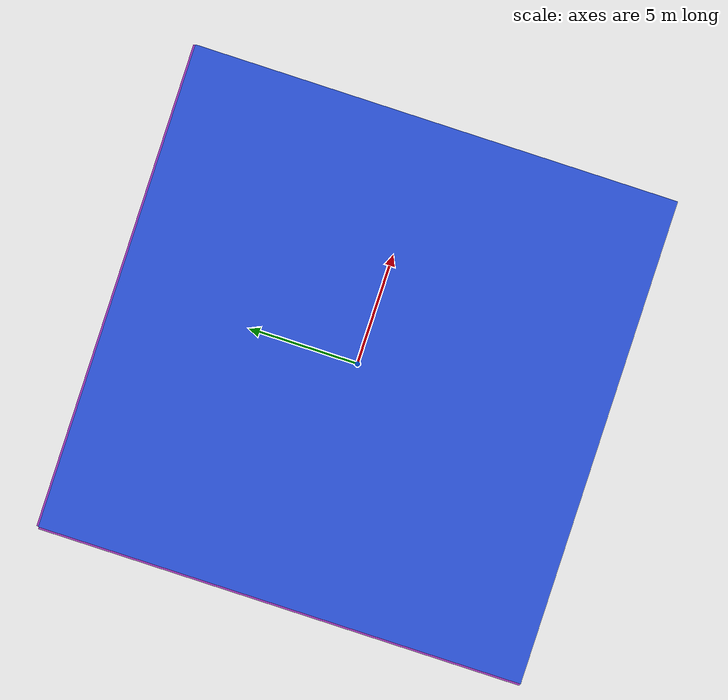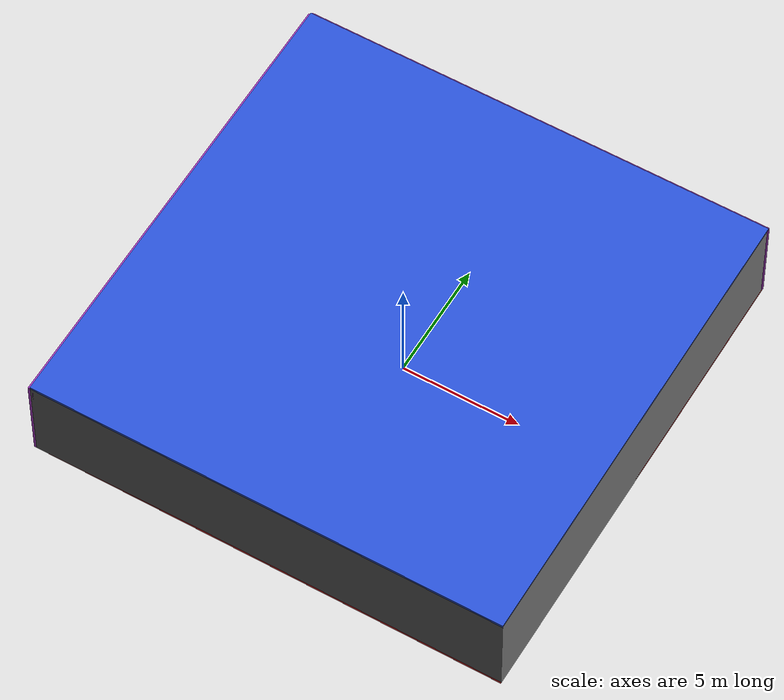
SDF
<sdf version="1.4">
 <world name="default">
  <physics type="ode">
   <max_step_size>0.001</max_step_size>
   <real_time_factor>1</real_time_factor>
   <real_time_update_rate>1000</real_time_update_rate>
   <gravity>0 0 -9.8</gravity>
  </physics>
  <scene><ambient>0.4 0.4 0.4 1</ambient><background>0.7 0.7 0.7 1</background><shadows>1</shadows></scene>
  <model name="Surrounding">
   <static>1</static>
   <link name="Ceiling">
    <collision name="Ceiling_Collision"><geometry><box><size>20 20 0.1</size></box></geometry></collision>
    <visual name="Ceiling_Visual">
     <geometry><box><size>20 20 0.1</size></box></geometry>
     <material>
      <script><uri>file://media/materials/scripts/gazebo.material</uri><name>Gazebo/BlueLaser</name></script>
     </material>
    </visual>
    <pose>0 0 4.05 0 0 0</pose>
   </link>
   <link name="Wall_South">
    <collision name="Wall_South_Collision">
     <geometry><box><size>20 0 4</size></box></geometry>
     <pose>0 0 2 0 -0 0</pose>
    </collision>
    <visual name="Wall_South_Visual">
     <pose>0 0 2 0 -0 0</pose>
     <geometry><box><size>20 0 4</size></box></geometry>
     <material>
      <script><uri>file://media/materials/scripts/gazebo.material</uri><name>Gazebo/Road</name></script>
     </material>
    </visual>
    <velocity_decay><linear>0</linear><angular>0</angular></velocity_decay>
    <pose>0 -10 0 0 -0 0</pose>
   </link>
   <link name="Wall_East">
    <collision name="Wall_21_Collision">
     <geometry><box><size>20 0 4</size></box></geometry>
     <pose>0 0 2 0 -0 0</pose>
    </collision>
    <visual name="Wall_21_Visual">
     <pose>0 0 2 0 -0 0</pose>
     <geometry><box><size>20 0 4</size></box></geometry>
     <material>
      <script><uri>file://media/materials/scripts/gazebo.material</uri><name>Gazebo/LightOn</name></script>
     </material>
    </visual>
    <velocity_decay><linear>0</linear><angular>0</angular></velocity_decay>
    <pose>10 0 0 0 -0 1.5708</pose>
   </link>
   <link name="Wall_North">
    <collision name="Wall_22_Collision">
     <geometry><box><size>20 0.2 4</size></box></geometry>
     <pose>0 0 2 0 -0 0</pose>
    </collision>
    <visual name="Wall_22_Visual">
     <pose>0 0 2 0 -0 0</pose>
     <geometry><box><size>20 0.2 4</size></box></geometry>
     <material>
      <script><uri>file://media/materials/scripts/gazebo.material</uri><name>Gazebo/PurpleGlow</name></script>
     </material>
    </visual>
    <velocity_decay><linear>0</linear><angular>0</angular></velocity_decay>
    <pose>0 10 0 0 -0 0</pose>
   </link>
   <link name="Wall_West">
    <collision name="Wall_23_Collision">
     <geometry><box><size>20 0.2 4</size></box></geometry>
     <pose>0 0 2 0 -0 0</pose>
    </collision>
    <visual name="Wall_23_Visual">
     <pose>0 0 2 0 -0 0</pose>
     <geometry><box><size>20 0.2 4</size></box></geometry>
     <material>
      <script><uri>file://media/materials/scripts/gazebo.material</uri><name>Gazebo/PurpleGlow</name></script>
     </material>
    </visual>
    <velocity_decay><linear>0</linear><angular>0</angular></velocity_decay>
    <pose>-10 0 0 0 0 -1.5708</pose>
   </link>
   <link name="Ground_link">
    <collision name="collision">
     <pose>0 0 .05 0 -0 0</pose>
     <geometry><box><size>20 20 0.1</size></box></geometry>
    </collision>
    <visual name="visual">
     <pose>0 0 .05 0 -0 0</pose>
     <geometry><box><size>20 20 0.1</size></box></geometry>
     <material>
      <script><uri>file://media/materials/scripts/gazebo.material</uri><name>Gazebo/Red</name></script>
     </material>
    </visual>
   </link>
   <static>1</static>
  </model>
  <spherical_coordinates>
   <surface_model>EARTH_WGS84</surface_model>
   <latitude_deg>0</latitude_deg>
   <longitude_deg>0</longitude_deg>
   <elevation>0</elevation>
   <heading_deg>0</heading_deg>
  </spherical_coordinates>
  <light name="lightball_0" type="diffuse">
   <diffuse>0.8 0.8 0.8 1</diffuse>
   <specular>0.2 0.2 0.2 1</specular>
   <attenuation>
    <range>100</range>
    <constant>0.7</constant>
    <linear>0.01</linear>
    <quadratic>0.001</quadratic>
   </attenuation>
   <direction>-0.5 0.1 -0.9</direction>
   <pose>-3.44864077778 6.02111767295 2.01624863194 0 0 0</pose>
  </light>
  <light name="lightball_1" type="diffuse">
   <diffuse>0.8 0.8 0.8 1</diffuse>
   <specular>0.2 0.2 0.2 1</specular>
   <attenuation>
    <range>100</range>
    <constant>0.7</constant>
    <linear>0.01</linear>
    <quadratic>0.001</quadratic>
   </attenuation>
   <direction>-0.5 0.1 -0.9</direction>
   <pose>6.47422879855 0.821346591508 1.30039781243 0 0 0</pose>
  </light>
  <light name="lightball_2" type="diffuse">
   <diffuse>0.8 0.8 0.8 1</diffuse>
   <specular>0.2 0.2 0.2 1</specular>
   <attenuation>
    <range>100</range>
    <constant>0.7</constant>
    <linear>0.01</linear>
    <quadratic>0.001</quadratic>
   </attenuation>
   <direction>-0.5 0.1 -0.9</direction>
   <pose>-3.45260100711 -8.74015438155 2.50297195635 0 0 0</pose>
  </light>
  <light name="lightball_3" type="diffuse">
   <diffuse>0.8 0.8 0.8 1</diffuse>
   <specular>0.2 0.2 0.2 1</specular>
   <attenuation>
    <range>100</range>
    <constant>0.7</constant>
    <linear>0.01</linear>
    <quadratic>0.001</quadratic>
   </attenuation>
   <direction>-0.5 0.1 -0.9</direction>
   <pose>-8.98157435827 2.46896066064 3.1847541786 0 0 0</pose>
  </light>
  <include>
   <uri>model://robocup_3Dsim_goal</uri>
   <pose>-8.63799574825 -0.959420222383 0 0 0 2.6215126506</pose>
  </include>
  <include>
   <uri>model://construction_cone</uri>
   <pose>-8.49032829101 7.62576691334 0 0 0 0.996138786455</pose>
  </include>
  <include>
   <uri>model://construction_cone</uri>
   <pose>-2.59162523926 7.79638427272 0 0 0 2.47026842804</pose>
  </include>
  <include><uri>model://cabinet</uri><pose>4.38540635347 -8.29494064289 0 0 0 0.131236230384</pose></include>
 </world>
</sdf>

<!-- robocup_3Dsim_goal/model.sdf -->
<sdf version="1.5">
  <model name="robocup_3d_goal">
    <static>true</static>
    <link name="left_post">
      <pose>0 1.05 0.45 0 0 0</pose>
      <collision name="collision">
        <geometry>
          <cylinder>
            <radius>0.05</radius>
            <length>0.9</length>
          </cylinder>
        </geometry>
      </collision>
      <visual name="visual">
        <geometry>
          <cylinder>
            <radius>0.05</radius>
            <length>0.9</length>
          </cylinder>
        </geometry>
        <material>
          <script>
            <uri>file://media/materials/scripts/gazebo.material</uri>
            <name>Gazebo/ZincYellow</name>
          </script>
        </material>
      </visual>
    </link>
    <link name="left_support_horiz_lower">
      <pose>0.30 1.05 0.01 0 0 0</pose>
      <collision name="collision">
        <geometry>
          <box>
            <size>0.50 0.02 0.02</size>
          </box>
        </geometry>
      </collision>
      <visual name="visual">
        <geometry>
          <box>
            <size>0.50 0.02 0.02</size>
          </box>
        </geometry>
        <material>
          <script>
            <uri>file://media/materials/scripts/gazebo.material</uri>
            <name>Gazebo/White</name>
          </script>
        </material>
      </visual>
    </link>
    <link name="left_support_horiz_upper">
      <pose>0.30 1.05 0.79 0 0 0</pose>
      <collision name="collision">
        <geometry>
          <box>
            <size>0.50 0.02 0.02</size>
          </box>
        </geometry>
      </collision>
      <visual name="visual">
        <geometry>
          <box>
            <size>0.50 0.02 0.02</size>
          </box>
        </geometry>
        <material>
          <script>
            <uri>file://media/materials/scripts/gazebo.material</uri>
            <name>Gazebo/White</name>
          </script>
        </material>
      </visual>
    </link>
    <link name="left_support_vertical">
      <pose>0.56 1.05 0.4 0 1.5708 0</pose>
      <collision name="collision">
        <geometry>
          <box>
            <size>0.80 0.02 0.02</size>
          </box>
        </geometry>
      </collision>
      <visual name="visual">
        <geometry>
          <box>
            <size>0.80 0.02 0.02</size>
          </box>
        </geometry>
        <material>
          <script>
            <uri>file://media/materials/scripts/gazebo.material</uri>
            <name>Gazebo/White</name>
          </script>
        </material>
      </visual>
    </link>
    <link name="right_support_horiz_lower">
      <pose>0.30 -1.05 0.01 0 0 0</pose>
      <collision name="collision">
        <geometry>
          <box>
            <size>0.50 0.02 0.02</size>
          </box>
        </geometry>
      </collision>
      <visual name="visual">
        <geometry>
          <box>
            <size>0.50 0.02 0.02</size>
          </box>
        </geometry>
        <material>
          <script>
            <uri>file://media/materials/scripts/gazebo.material</uri>
            <name>Gazebo/White</name>
          </script>
        </material>
      </visual>
    </link>
    <link name="right_support_horiz_upper">
      <pose>0.30 -1.05 0.79 0 0 0</pose>
      <collision name="collision">
        <geometry>
          <box>
            <size>0.50 0.02 0.02</size>
          </box>
        </geometry>
      </collision>
      <visual name="visual">
        <geometry>
          <box>
            <size>0.50 0.02 0.02</size>
          </box>
        </geometry>
        <material>
          <script>
            <uri>file://media/materials/scripts/gazebo.material</uri>
            <name>Gazebo/White</name>
          </script>
        </material>
      </visual>
    </link>
    <link name="right_support_vertical">
      <pose>0.56 -1.05 0.4 0 1.5708 0</pose>
      <collision name="collision">
        <geometry>
          <box>
            <size>0.80 0.02 0.02</size>
          </box>
        </geometry>
      </collision>
      <visual name="visual">
        <geometry>
          <box>
            <size>0.80 0.02 0.02</size>
          </box>
        </geometry>
        <material>
          <script>
            <uri>file://media/materials/scripts/gazebo.material</uri>
            <name>Gazebo/White</name>
          </script>
        </material>
      </visual>
    </link>
    <link name="center_support_horiz_lower">
      <pose>0.56 0 0.01 0 1.5708 0</pose>
      <collision name="collision">
        <geometry>
          <box>
            <size>0.02 2.08 0.02</size>
          </box>
        </geometry>
      </collision>
      <visual name="visual">
        <geometry>
          <box>
            <size>0.02 2.08 0.02</size>
          </box>
        </geometry>
        <material>
          <script>
            <uri>file://media/materials/scripts/gazebo.material</uri>
            <name>Gazebo/White</name>
          </script>
        </material>
      </visual>
    </link>
    <link name="center_support_horiz_upper">
      <pose>0.56 0 0.79 0 1.5708 0</pose>
      <collision name="collision">
        <geometry>
          <box>
            <size>0.02 2.08 0.02</size>
          </box>
        </geometry>
      </collision>
      <visual name="visual">
        <geometry>
          <box>
            <size>0.02 2.08 0.02</size>
          </box>
        </geometry>
        <material>
          <script>
            <uri>file://media/materials/scripts/gazebo.material</uri>
            <name>Gazebo/White</name>
          </script>
        </material>
      </visual>
    </link>
    <link name="right_post">
      <pose>0 -1.05 0.45 0 0 0</pose>
      <collision name="collision">
        <geometry>
          <cylinder>
            <radius>0.05</radius>
            <length>0.9</length>
          </cylinder>
        </geometry>
      </collision>
      <visual name="visual">
        <geometry>
          <cylinder>
            <radius>0.05</radius>
            <length>0.9</length>
          </cylinder>
        </geometry>
        <material>
          <script>
            <uri>file://media/materials/scripts/gazebo.material</uri>
            <name>Gazebo/ZincYellow</name>
          </script>
        </material>
      </visual>
    </link>
    <link name="crossbar">
      <pose>0 0 0.85 1.57 1.57 0</pose>
      <collision name="collision">
        <geometry>
          <cylinder>
            <radius>0.05</radius>
            <length>2.0</length>
          </cylinder>
        </geometry>
      </collision>
      <visual name="visual">
        <geometry>
          <cylinder>
            <radius>0.05</radius>
            <length>2.0</length>
          </cylinder>
        </geometry>
        <material>
          <script>
            <uri>file://media/materials/scripts/gazebo.material</uri>
            <name>Gazebo/ZincYellow</name>
          </script>
        </material>
      </visual>
    </link>
    <link name="center_net">
      <pose>0.56 0 0.40 0 0 0</pose>
      <collision name="collision">
        <geometry>
          <box>
            <size>0.01 2.1 0.80</size>
          </box>
        </geometry>
      </collision>
      <visual name="visual">
        <geometry>
          <box>
            <size>0.01 2.1 0.80</size>
          </box>
        </geometry>
        <material>
          <script>
            <uri>model://../model_source/models/robocup09_spl_field/materials/scripts/</uri>
            <uri>model://../model_source/models/robocup09_spl_field/materials/textures/</uri>
            <name>RoboCup/Net</name>
          </script>
        </material>
      </visual>
    </link>
    <link name="left_net">
      <pose>0.30 1.05 0.40 0 0 0</pose>
      <collision name="collision">
        <geometry>
          <box>
            <size>0.50 0.01 0.76</size>
          </box>
        </geometry>
      </collision>
      <visual name="visual">
        <geometry>
          <box>
            <size>0.50 0.01 0.76</size>
          </box>
        </geometry>
        <material>
          <script>
            <uri>model://../model_source/models/robocup09_spl_field/materials/scripts/</uri>
            <uri>model://../model_source/models/robocup09_spl_field/materials/textures/</uri>
            <name>RoboCup/Net</name>
          </script>
        </material>
      </visual>
    </link>
    <link name="right_net">
      <pose>0.30 -1.05 0.40 0 0 0</pose>
      <collision name="collision">
        <geometry>
          <box>
            <size>0.50 0.01 0.76</size>
          </box>
        </geometry>
      </collision>
      <visual name="visual">
        <geometry>
          <box>
            <size>0.50 0.01 0.76</size>
          </box>
        </geometry>
        <material>
          <script>
            <uri>model://../model_source/models/robocup09_spl_field/materials/scripts/</uri>
            <uri>model://../model_source/models/robocup09_spl_field/materials/textures/</uri>
            <name>RoboCup/Net</name>
          </script>
        </material>
      </visual>
    </link>
  </model>
</sdf>

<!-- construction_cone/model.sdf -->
<sdf version="1.5">
  <model name="Construction Cone">
    <link name="link">
      <collision name="collision">
        <geometry>
          <mesh>
            <scale>10 10 10</scale>
            <uri>file://isr-testbed/construction_cone/meshes/construction_cone.dae</uri>
          </mesh>
        </geometry>
      </collision>
      <visual name="visual">
        <geometry>
          <mesh>
            <scale>10 10 10</scale>
            <uri>file://isr-testbed/construction_cone/meshes/construction_cone.dae</uri>
          </mesh>
        </geometry>
      </visual>
    </link>
  </model>
</sdf>

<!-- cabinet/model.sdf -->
<sdf version="1.5">
  <model name="cabinet">
    <static>true</static>
    <link name="cabinet_bottom_plate">
      <inertial>
        <pose>0 0 -1 0 0 0</pose>
        <inertia>
          <ixx>2.050000</ixx>
          <ixy>0</ixy>
          <ixz>0</ixz>
          <iyy>2.050000</iyy>
          <iyz>0</iyz>
          <izz>2.050000</izz>
        </inertia>
        <mass>25.000000</mass>
      </inertial>
      <collision name="cabinet_bottom_plate_geom">
        <pose>0 0 0.010000 0 0 0</pose>
        <geometry>
          <box>
            <size>0.450000 0.450000 0.020000</size>
          </box>
        </geometry>
      </collision>
      <visual name="cabinet_bottom_plate_geom_visual">
        <pose>0 0 0.010000 0 0 0</pose>
        <geometry>
          <box>
            <size>0.450000 0.450000 0.020000</size>
          </box>
        </geometry>
        <material>
          <script>
            <uri>model://media/materials/scripts/gazebo.material</uri>
            <name>Gazebo/Wood</name>
          </script>
        </material>
      </visual>
      <collision name="cabinet_bottom_plate_geom_cabinet_back_plate">
        <pose>0.235000 0 0.510000 0 0 0</pose>
        <geometry>
          <box>
            <size>0.020000 0.450000 1.020000</size>
          </box>
        </geometry>
      </collision>
      <visual name="cabinet_bottom_plate_geom_cabinet_back_plate_visual">
        <pose>0.235000 0 0.510000 0 0 0</pose>
        <geometry>
          <box>
            <size>0.020000 0.450000 1.020000</size>
          </box>
        </geometry>
        <material>
          <script>
            <uri>model://media/materials/scripts/gazebo.material</uri>
            <name>Gazebo/Wood</name>
          </script>
        </material>
      </visual>
      <collision name="cabinet_bottom_plate_geom_cabinet_left_plate">
        <pose>0 0.235000 0.510000 0 0 0</pose>
        <geometry>
          <box>
            <size>0.450000 0.020000 1.020000</size>
          </box>
        </geometry>
      </collision>
      <visual name="cabinet_bottom_plate_geom_cabinet_left_plate_visual">
        <pose>0 0.235000 0.510000 0 0 0</pose>
        <geometry>
          <box>
            <size>0.450000 0.020000 1.020000</size>
          </box>
        </geometry>
        <material>
          <script>
            <uri>model://media/materials/scripts/gazebo.material</uri>
            <name>Gazebo/Wood</name>
          </script>
        </material>
      </visual>
      <collision name="cabinet_bottom_plate_geom_cabinet_middle_plate">
        <pose>0 0 0.510000 0 0 0</pose>
        <geometry>
          <box>
            <size>0.450000 0.450000 0.020000</size>
          </box>
        </geometry>
      </collision>
      <visual name="cabinet_bottom_plate_geom_cabinet_middle_plate_visual">
        <pose>0 0 0.510000 0 0 0</pose>
        <geometry>
          <box>
            <size>0.450000 0.450000 0.020000</size>
          </box>
        </geometry>
        <material>
          <script>
            <uri>model://media/materials/scripts/gazebo.material</uri>
            <name>Gazebo/Wood</name>
          </script>
        </material>
      </visual>
      <collision name="cabinet_bottom_plate_geom_cabinet_right_plate">
        <pose>0 -0.235000 0.510000 0 0 0</pose>
        <geometry>
          <box>
            <size>0.450000 0.020000 1.020000</size>
          </box>
        </geometry>
      </collision>
      <visual name="cabinet_bottom_plate_geom_cabinet_right_plate_visual">
        <pose>0 -0.235000 0.510000 0 0 0</pose>
        <geometry>
          <box>
            <size>0.450000 0.020000 1.020000</size>
          </box>
        </geometry>
        <material>
          <script>
            <uri>model://media/materials/scripts/gazebo.material</uri>
            <name>Gazebo/Wood</name>
          </script>
        </material>
      </visual>
      <collision name="cabinet_bottom_plate_geom_cabinet_top_plate">
        <pose>0 0 1.010000 0 0 0</pose>
        <geometry>
          <box>
            <size>0.450000 0.450000 0.020000</size>
          </box>
        </geometry>
      </collision>
      <visual name="cabinet_bottom_plate_geom_cabinet_top_plate_visual">
        <pose>0 0 1.010000 0 0 0</pose>
        <geometry>
          <box>
            <size>0.450000 0.450000 0.020000</size>
          </box>
        </geometry>
        <material>
          <script>
            <uri>model://media/materials/scripts/gazebo.material</uri>
            <name>Gazebo/Wood</name>
          </script>
        </material>
      </visual>
    </link>
  </model>
</sdf>
